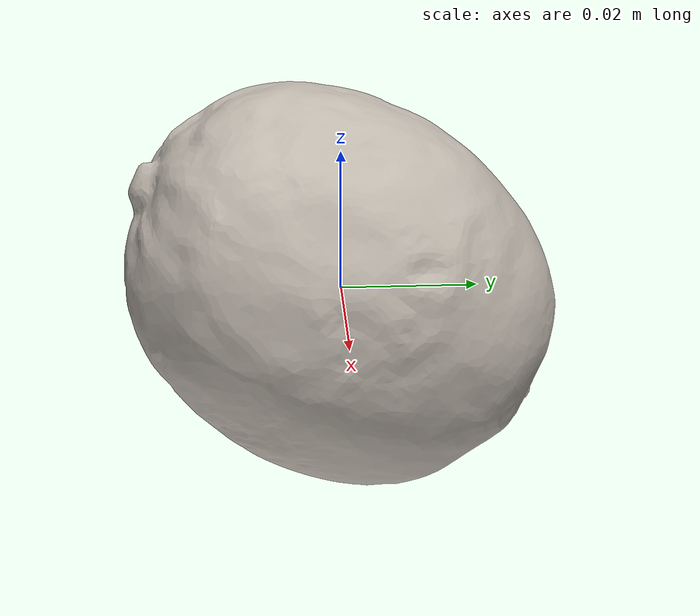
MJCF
<mujoco model="lemon">
  <compiler angle="radian" />

  <asset>
    <mesh name="lemon_visual_mesh" file="lemon/textured.obj" />
    <mesh name="lemon_collision_mesh_0" file="lemon/textured_coacd_0.stl" />
    <mesh name="lemon_collision_mesh_1" file="lemon/textured_coacd_1.stl" />
    <texture name="lemon_texture" type="2d" file="lemon/texture_map.png" />
    <material name="lemon_material" texture="lemon_texture" />
  </asset>

  <worldbody>
    <body name="lemon" pos="0 0 0" euler="0 0 0">
      <freejoint name="lemon_joint" />
      <geom name="lemon_visual_geom" type="mesh" mesh="lemon_visual_mesh" material="lemon_material" pos="-0.0 -0.0 -0.0" euler="0 0 0" contype="0" conaffinity="0" group="0" />
      <geom name="lemon_collision_geom_0" type="mesh" mesh="lemon_collision_mesh_0" pos="-0.0 -0.0 -0.0" euler="0 0 0" contype="1" conaffinity="1" group="3" />
      <geom name="lemon_collision_geom_1" type="mesh" mesh="lemon_collision_mesh_1" pos="-0.0 -0.0 -0.0" euler="0 0 0" contype="1" conaffinity="1" group="3" />
      <inertial pos="0 0 0" euler="0 0 0" mass="0.029" diaginertia="0.001 0.001 0.001" />
    </body>
  </worldbody>
</mujoco>
